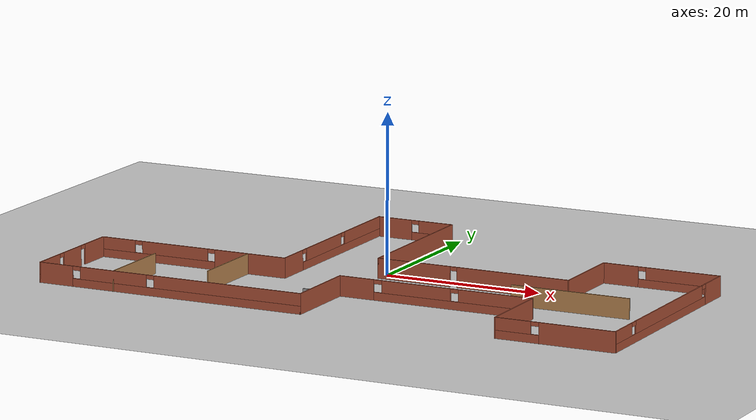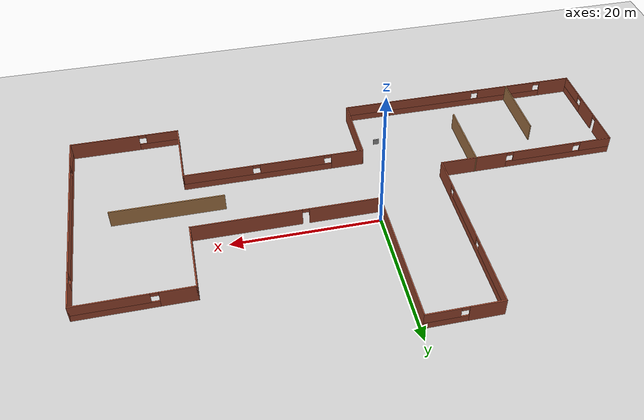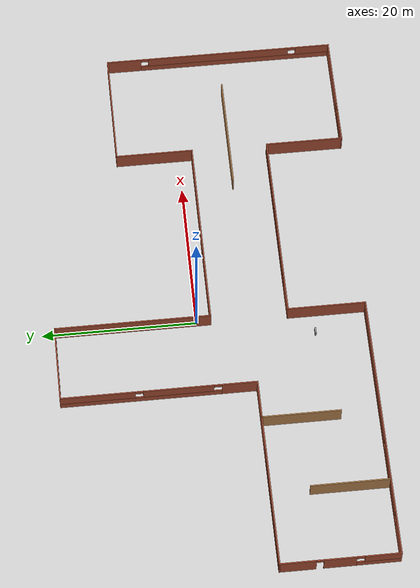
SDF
<sdf version="1.6">
 <world name="default">
  <model name="ground_plane">
   <static>1</static>
   <link name="link">
    <collision name="collision">
     <geometry><plane><normal>0 0 1</normal><size>100 100</size></plane></geometry>
     <surface>
      <contact><collide_bitmask>65535</collide_bitmask></contact>
      <friction><ode><mu>100</mu><mu2>50</mu2></ode></friction>
     </surface>
    </collision>
    <visual name="visual">
     <cast_shadows>0</cast_shadows>
     <geometry><plane><normal>0 0 1</normal><size>100 100</size></plane></geometry>
     <material>
      <script><uri>file://media/materials/scripts/gazebo.material</uri><name>Gazebo/Grey</name></script>
     </material>
    </visual>
   </link>
  </model>
  <model name="Building">
   <pose>2.15486 -1.76376 0 0 -0 0</pose>
   <link name="Wall_0">
    <pose>-12.5 7.5 0 0 -0 1.5708</pose>
    <visual name="Wall_0_Visual_0">
     <pose>-10.2875 0 1.25 0 -0 0</pose>
     <geometry><box><size>4.575 0.15 2.5</size></box></geometry>
     <material>
      <script><uri>file://media/materials/scripts/gazebo.material</uri><name>Gazebo/Bricks</name></script>
      <ambient>1 1 1 1</ambient>
     </material>
     <meta><layer>0</layer></meta>
    </visual>
    <collision name="Wall_0_Collision_0">
     <geometry><box><size>4.575 0.15 2.5</size></box></geometry>
     <pose>-10.2875 0 1.25 0 -0 0</pose>
    </collision>
    <visual name="Wall_0_Visual_1">
     <pose>2.2875 0 0.5 0 -0 0</pose>
     <geometry><box><size>20.575 0.15 1</size></box></geometry>
     <material>
      <script><uri>file://media/materials/scripts/gazebo.material</uri><name>Gazebo/Bricks</name></script>
      <ambient>1 1 1 1</ambient>
     </material>
     <meta><layer>0</layer></meta>
    </visual>
    <collision name="Wall_0_Collision_1">
     <geometry><box><size>20.575 0.15 1</size></box></geometry>
     <pose>2.2875 0 0.5 0 -0 0</pose>
    </collision>
    <visual name="Wall_0_Visual_2">
     <pose>-2.5 0 1.75 0 -0 0</pose>
     <geometry><box><size>9 0.15 1.5</size></box></geometry>
     <material>
      <script><uri>file://media/materials/scripts/gazebo.material</uri><name>Gazebo/Bricks</name></script>
      <ambient>1 1 1 1</ambient>
     </material>
     <meta><layer>0</layer></meta>
    </visual>
    <collision name="Wall_0_Collision_2">
     <geometry><box><size>9 0.15 1.5</size></box></geometry>
     <pose>-2.5 0 1.75 0 -0 0</pose>
    </collision>
    <visual name="Wall_0_Visual_3">
     <pose>7.7875 0 1.75 0 -0 0</pose>
     <geometry><box><size>9.575 0.15 1.5</size></box></geometry>
     <material>
      <script><uri>file://media/materials/scripts/gazebo.material</uri><name>Gazebo/Bricks</name></script>
      <ambient>1 1 1 1</ambient>
     </material>
     <meta><layer>0</layer></meta>
    </visual>
    <collision name="Wall_0_Collision_3">
     <geometry><box><size>9.575 0.15 1.5</size></box></geometry>
     <pose>7.7875 0 1.75 0 -0 0</pose>
    </collision>
    <visual name="Wall_0_Visual_4">
     <pose>-7.5 0 2.25 0 -0 0</pose>
     <geometry><box><size>1 0.15 0.5</size></box></geometry>
     <material>
      <script><uri>file://media/materials/scripts/gazebo.material</uri><name>Gazebo/Bricks</name></script>
      <ambient>1 1 1 1</ambient>
     </material>
     <meta><layer>0</layer></meta>
    </visual>
    <collision name="Wall_0_Collision_4">
     <geometry><box><size>1 0.15 0.5</size></box></geometry>
     <pose>-7.5 0 2.25 0 -0 0</pose>
    </collision>
    <visual name="Wall_0_Visual_5">
     <pose>2.5 0 2.25 0 -0 0</pose>
     <geometry><box><size>1 0.15 0.5</size></box></geometry>
     <material>
      <script><uri>file://media/materials/scripts/gazebo.material</uri><name>Gazebo/Bricks</name></script>
      <ambient>1 1 1 1</ambient>
     </material>
     <meta><layer>0</layer></meta>
    </visual>
    <collision name="Wall_0_Collision_5">
     <geometry><box><size>1 0.15 0.5</size></box></geometry>
     <pose>2.5 0 2.25 0 -0 0</pose>
    </collision>
   </link>
   <link name="Wall_11">
    <pose>30 10 0 0 -0 0</pose>
    <visual name="Wall_11_Visual_0">
     <pose>-5.2875 0 1.25 0 -0 0</pose>
     <geometry><box><size>4.575 0.15 2.5</size></box></geometry>
     <material>
      <script><uri>file://media/materials/scripts/gazebo.material</uri><name>Gazebo/Bricks</name></script>
      <ambient>1 1 1 1</ambient>
     </material>
     <meta><layer>0</layer></meta>
    </visual>
    <collision name="Wall_11_Collision_0">
     <geometry><box><size>4.575 0.15 2.5</size></box></geometry>
     <pose>-5.2875 0 1.25 0 -0 0</pose>
    </collision>
    <visual name="Wall_11_Visual_1">
     <pose>2.2875 0 0.5 0 -0 0</pose>
     <geometry><box><size>10.575 0.15 1</size></box></geometry>
     <material>
      <script><uri>file://media/materials/scripts/gazebo.material</uri><name>Gazebo/Bricks</name></script>
      <ambient>1 1 1 1</ambient>
     </material>
     <meta><layer>0</layer></meta>
    </visual>
    <collision name="Wall_11_Collision_1">
     <geometry><box><size>10.575 0.15 1</size></box></geometry>
     <pose>2.2875 0 0.5 0 -0 0</pose>
    </collision>
    <visual name="Wall_11_Visual_2">
     <pose>2.7875 0 1.75 0 -0 0</pose>
     <geometry><box><size>9.575 0.15 1.5</size></box></geometry>
     <material>
      <script><uri>file://media/materials/scripts/gazebo.material</uri><name>Gazebo/Bricks</name></script>
      <ambient>1 1 1 1</ambient>
     </material>
     <meta><layer>0</layer></meta>
    </visual>
    <collision name="Wall_11_Collision_2">
     <geometry><box><size>9.575 0.15 1.5</size></box></geometry>
     <pose>2.7875 0 1.75 0 -0 0</pose>
    </collision>
    <visual name="Wall_11_Visual_3">
     <pose>-2.5 0 2.25 0 -0 0</pose>
     <geometry><box><size>1 0.15 0.5</size></box></geometry>
     <material>
      <script><uri>file://media/materials/scripts/gazebo.material</uri><name>Gazebo/Bricks</name></script>
      <ambient>1 1 1 1</ambient>
     </material>
     <meta><layer>0</layer></meta>
    </visual>
    <collision name="Wall_11_Collision_3">
     <geometry><box><size>1 0.15 0.5</size></box></geometry>
     <pose>-2.5 0 2.25 0 -0 0</pose>
    </collision>
   </link>
   <link name="Wall_13">
    <pose>37.5 -4.925 0 0 0 -1.5708</pose>
    <visual name="Wall_13_Visual_0">
     <pose>-12.7125 0 1.25 0 -0 0</pose>
     <geometry><box><size>4.575 0.15 2.5</size></box></geometry>
     <material>
      <script><uri>file://media/materials/scripts/gazebo.material</uri><name>Gazebo/Bricks</name></script>
      <ambient>1 1 1 1</ambient>
     </material>
     <meta><layer>0</layer></meta>
    </visual>
    <collision name="Wall_13_Collision_0">
     <geometry><box><size>4.575 0.15 2.5</size></box></geometry>
     <pose>-12.7125 0 1.25 0 -0 0</pose>
    </collision>
    <visual name="Wall_13_Visual_1">
     <pose>2.2875 0 0.5 0 -0 0</pose>
     <geometry><box><size>25.425 0.15 1</size></box></geometry>
     <material>
      <script><uri>file://media/materials/scripts/gazebo.material</uri><name>Gazebo/Bricks</name></script>
      <ambient>1 1 1 1</ambient>
     </material>
     <meta><layer>0</layer></meta>
    </visual>
    <collision name="Wall_13_Collision_1">
     <geometry><box><size>25.425 0.15 1</size></box></geometry>
     <pose>2.2875 0 0.5 0 -0 0</pose>
    </collision>
    <visual name="Wall_13_Visual_2">
     <pose>0.075 0 1.75 0 -0 0</pose>
     <geometry><box><size>19 0.15 1.5</size></box></geometry>
     <material>
      <script><uri>file://media/materials/scripts/gazebo.material</uri><name>Gazebo/Bricks</name></script>
      <ambient>1 1 1 1</ambient>
     </material>
     <meta><layer>0</layer></meta>
    </visual>
    <collision name="Wall_13_Collision_2">
     <geometry><box><size>19 0.15 1.5</size></box></geometry>
     <pose>0.075 0 1.75 0 -0 0</pose>
    </collision>
    <visual name="Wall_13_Visual_3">
     <pose>12.7875 0 1.75 0 -0 0</pose>
     <geometry><box><size>4.425 0.15 1.5</size></box></geometry>
     <material>
      <script><uri>file://media/materials/scripts/gazebo.material</uri><name>Gazebo/Bricks</name></script>
      <ambient>1 1 1 1</ambient>
     </material>
     <meta><layer>0</layer></meta>
    </visual>
    <collision name="Wall_13_Collision_3">
     <geometry><box><size>4.425 0.15 1.5</size></box></geometry>
     <pose>12.7875 0 1.75 0 -0 0</pose>
    </collision>
    <visual name="Wall_13_Visual_4">
     <pose>-9.925 0 2.25 0 -0 0</pose>
     <geometry><box><size>1 0.15 0.5</size></box></geometry>
     <material>
      <script><uri>file://media/materials/scripts/gazebo.material</uri><name>Gazebo/Bricks</name></script>
      <ambient>1 1 1 1</ambient>
     </material>
     <meta><layer>0</layer></meta>
    </visual>
    <collision name="Wall_13_Collision_4">
     <geometry><box><size>1 0.15 0.5</size></box></geometry>
     <pose>-9.925 0 2.25 0 -0 0</pose>
    </collision>
    <visual name="Wall_13_Visual_5">
     <pose>10.075 0 2.25 0 -0 0</pose>
     <geometry><box><size>1 0.15 0.5</size></box></geometry>
     <material>
      <script><uri>file://media/materials/scripts/gazebo.material</uri><name>Gazebo/Bricks</name></script>
      <ambient>1 1 1 1</ambient>
     </material>
     <meta><layer>0</layer></meta>
    </visual>
    <collision name="Wall_13_Collision_5">
     <geometry><box><size>1 0.15 0.5</size></box></geometry>
     <pose>10.075 0 2.25 0 -0 0</pose>
    </collision>
   </link>
   <link name="Wall_15">
    <pose>30 -20 0 0 -0 3.14159</pose>
    <visual name="Wall_15_Visual_0">
     <pose>-2.7875 0 1.25 0 -0 0</pose>
     <geometry><box><size>9.575 0.15 2.5</size></box></geometry>
     <material>
      <script><uri>file://media/materials/scripts/gazebo.material</uri><name>Gazebo/Bricks</name></script>
      <ambient>1 1 1 1</ambient>
     </material>
     <meta><layer>0</layer></meta>
    </visual>
    <collision name="Wall_15_Collision_0">
     <geometry><box><size>9.575 0.15 2.5</size></box></geometry>
     <pose>-2.7875 0 1.25 0 -0 0</pose>
    </collision>
    <visual name="Wall_15_Visual_1">
     <pose>4.7875 0 0.5 0 -0 0</pose>
     <geometry><box><size>5.575 0.15 1</size></box></geometry>
     <material>
      <script><uri>file://media/materials/scripts/gazebo.material</uri><name>Gazebo/Bricks</name></script>
      <ambient>1 1 1 1</ambient>
     </material>
     <meta><layer>0</layer></meta>
    </visual>
    <collision name="Wall_15_Collision_1">
     <geometry><box><size>5.575 0.15 1</size></box></geometry>
     <pose>4.7875 0 0.5 0 -0 0</pose>
    </collision>
    <visual name="Wall_15_Visual_2">
     <pose>5.2875 0 1.75 0 -0 0</pose>
     <geometry><box><size>4.575 0.15 1.5</size></box></geometry>
     <material>
      <script><uri>file://media/materials/scripts/gazebo.material</uri><name>Gazebo/Bricks</name></script>
      <ambient>1 1 1 1</ambient>
     </material>
     <meta><layer>0</layer></meta>
    </visual>
    <collision name="Wall_15_Collision_2">
     <geometry><box><size>4.575 0.15 1.5</size></box></geometry>
     <pose>5.2875 0 1.75 0 -0 0</pose>
    </collision>
    <visual name="Wall_15_Visual_3">
     <pose>2.5 0 2.25 0 -0 0</pose>
     <geometry><box><size>1 0.15 0.5</size></box></geometry>
     <material>
      <script><uri>file://media/materials/scripts/gazebo.material</uri><name>Gazebo/Bricks</name></script>
      <ambient>1 1 1 1</ambient>
     </material>
     <meta><layer>0</layer></meta>
    </visual>
    <collision name="Wall_15_Collision_3">
     <geometry><box><size>1 0.15 0.5</size></box></geometry>
     <pose>2.5 0 2.25 0 -0 0</pose>
    </collision>
   </link>
   <link name="Wall_17">
    <collision name="Wall_17_Collision">
     <geometry><box><size>10.15 0.15 2.5</size></box></geometry>
     <pose>0 0 1.25 0 -0 0</pose>
    </collision>
    <visual name="Wall_17_Visual">
     <pose>0 0 1.25 0 -0 0</pose>
     <geometry><box><size>10.15 0.15 2.5</size></box></geometry>
     <material>
      <script><uri>file://media/materials/scripts/gazebo.material</uri><name>Gazebo/Bricks</name></script>
      <ambient>1 1 1 1</ambient>
     </material>
     <meta><layer>0</layer></meta>
    </visual>
    <pose>22.5 -15 0 0 -0 1.5708</pose>
   </link>
   <link name="Wall_19">
    <pose>-25 -5 0 0 -0 3.14159</pose>
    <visual name="Wall_19_Visual_0">
     <pose>-7.7875 0 1.25 0 -0 0</pose>
     <geometry><box><size>9.575 0.15 2.5</size></box></geometry>
     <material>
      <script><uri>file://media/materials/scripts/gazebo.material</uri><name>Gazebo/Bricks</name></script>
      <ambient>1 1 1 1</ambient>
     </material>
     <meta><layer>0</layer></meta>
    </visual>
    <collision name="Wall_19_Collision_0">
     <geometry><box><size>9.575 0.15 2.5</size></box></geometry>
     <pose>-7.7875 0 1.25 0 -0 0</pose>
    </collision>
    <visual name="Wall_19_Visual_1">
     <pose>4.7875 0 0.5 0 -0 0</pose>
     <geometry><box><size>15.575 0.15 1</size></box></geometry>
     <material>
      <script><uri>file://media/materials/scripts/gazebo.material</uri><name>Gazebo/Bricks</name></script>
      <ambient>1 1 1 1</ambient>
     </material>
     <meta><layer>0</layer></meta>
    </visual>
    <collision name="Wall_19_Collision_1">
     <geometry><box><size>15.575 0.15 1</size></box></geometry>
     <pose>4.7875 0 0.5 0 -0 0</pose>
    </collision>
    <visual name="Wall_19_Visual_2">
     <pose>2.5 0 1.75 0 -0 0</pose>
     <geometry><box><size>9 0.15 1.5</size></box></geometry>
     <material>
      <script><uri>file://media/materials/scripts/gazebo.material</uri><name>Gazebo/Bricks</name></script>
      <ambient>1 1 1 1</ambient>
     </material>
     <meta><layer>0</layer></meta>
    </visual>
    <collision name="Wall_19_Collision_2">
     <geometry><box><size>9 0.15 1.5</size></box></geometry>
     <pose>2.5 0 1.75 0 -0 0</pose>
    </collision>
    <visual name="Wall_19_Visual_3">
     <pose>10.2875 0 1.75 0 -0 0</pose>
     <geometry><box><size>4.575 0.15 1.5</size></box></geometry>
     <material>
      <script><uri>file://media/materials/scripts/gazebo.material</uri><name>Gazebo/Bricks</name></script>
      <ambient>1 1 1 1</ambient>
     </material>
     <meta><layer>0</layer></meta>
    </visual>
    <collision name="Wall_19_Collision_3">
     <geometry><box><size>4.575 0.15 1.5</size></box></geometry>
     <pose>10.2875 0 1.75 0 -0 0</pose>
    </collision>
    <visual name="Wall_19_Visual_4">
     <pose>-2.5 0 2.25 0 -0 0</pose>
     <geometry><box><size>1 0.15 0.5</size></box></geometry>
     <material>
      <script><uri>file://media/materials/scripts/gazebo.material</uri><name>Gazebo/Bricks</name></script>
      <ambient>1 1 1 1</ambient>
     </material>
     <meta><layer>0</layer></meta>
    </visual>
    <collision name="Wall_19_Collision_4">
     <geometry><box><size>1 0.15 0.5</size></box></geometry>
     <pose>-2.5 0 2.25 0 -0 0</pose>
    </collision>
    <visual name="Wall_19_Visual_5">
     <pose>7.5 0 2.25 0 -0 0</pose>
     <geometry><box><size>1 0.15 0.5</size></box></geometry>
     <material>
      <script><uri>file://media/materials/scripts/gazebo.material</uri><name>Gazebo/Bricks</name></script>
      <ambient>1 1 1 1</ambient>
     </material>
     <meta><layer>0</layer></meta>
    </visual>
    <collision name="Wall_19_Collision_5">
     <geometry><box><size>1 0.15 0.5</size></box></geometry>
     <pose>7.5 0 2.25 0 -0 0</pose>
    </collision>
   </link>
   <link name="Wall_2">
    <pose>-7.5 20 0 0 -0 0</pose>
    <visual name="Wall_2_Visual_0">
     <pose>-2.7875 0 1.25 0 -0 0</pose>
     <geometry><box><size>4.575 0.15 2.5</size></box></geometry>
     <material>
      <script><uri>file://media/materials/scripts/gazebo.material</uri><name>Gazebo/Bricks</name></script>
      <ambient>1 1 1 1</ambient>
     </material>
     <meta><layer>0</layer></meta>
    </visual>
    <collision name="Wall_2_Collision_0">
     <geometry><box><size>4.575 0.15 2.5</size></box></geometry>
     <pose>-2.7875 0 1.25 0 -0 0</pose>
    </collision>
    <visual name="Wall_2_Visual_1">
     <pose>2.2875 0 0.5 0 -0 0</pose>
     <geometry><box><size>5.575 0.15 1</size></box></geometry>
     <material>
      <script><uri>file://media/materials/scripts/gazebo.material</uri><name>Gazebo/Bricks</name></script>
      <ambient>1 1 1 1</ambient>
     </material>
     <meta><layer>0</layer></meta>
    </visual>
    <collision name="Wall_2_Collision_1">
     <geometry><box><size>5.575 0.15 1</size></box></geometry>
     <pose>2.2875 0 0.5 0 -0 0</pose>
    </collision>
    <visual name="Wall_2_Visual_2">
     <pose>2.7875 0 1.75 0 -0 0</pose>
     <geometry><box><size>4.575 0.15 1.5</size></box></geometry>
     <material>
      <script><uri>file://media/materials/scripts/gazebo.material</uri><name>Gazebo/Bricks</name></script>
      <ambient>1 1 1 1</ambient>
     </material>
     <meta><layer>0</layer></meta>
    </visual>
    <collision name="Wall_2_Collision_2">
     <geometry><box><size>4.575 0.15 1.5</size></box></geometry>
     <pose>2.7875 0 1.75 0 -0 0</pose>
    </collision>
    <visual name="Wall_2_Visual_3">
     <pose>0 0 2.25 0 -0 0</pose>
     <geometry><box><size>1 0.15 0.5</size></box></geometry>
     <material>
      <script><uri>file://media/materials/scripts/gazebo.material</uri><name>Gazebo/Bricks</name></script>
      <ambient>1 1 1 1</ambient>
     </material>
     <meta><layer>0</layer></meta>
    </visual>
    <collision name="Wall_2_Collision_3">
     <geometry><box><size>1 0.15 0.5</size></box></geometry>
     <pose>0 0 2.25 0 -0 0</pose>
    </collision>
   </link>
   <link name="Wall_21">
    <pose>-37.5 -12.5 0 0 0 -1.5708</pose>
    <visual name="Wall_21_Visual_0">
     <pose>-5.2625 0 1.25 0 -0 0</pose>
     <geometry><box><size>4.625 0.15 2.5</size></box></geometry>
     <material>
      <script><uri>file://media/materials/scripts/gazebo.material</uri><name>Gazebo/Bricks</name></script>
      <ambient>1 1 1 1</ambient>
     </material>
     <meta><layer>0</layer></meta>
    </visual>
    <collision name="Wall_21_Collision_0">
     <geometry><box><size>4.625 0.15 2.5</size></box></geometry>
     <pose>-5.2625 0 1.25 0 -0 0</pose>
    </collision>
    <visual name="Wall_21_Visual_1">
     <pose>-0.025 0 1.25 0 -0 0</pose>
     <geometry><box><size>4.05 0.15 2.5</size></box></geometry>
     <material>
      <script><uri>file://media/materials/scripts/gazebo.material</uri><name>Gazebo/Bricks</name></script>
      <ambient>1 1 1 1</ambient>
     </material>
     <meta><layer>0</layer></meta>
    </visual>
    <collision name="Wall_21_Collision_1">
     <geometry><box><size>4.05 0.15 2.5</size></box></geometry>
     <pose>-0.025 0 1.25 0 -0 0</pose>
    </collision>
    <visual name="Wall_21_Visual_2">
     <pose>4.7875 0 0.5 0 -0 0</pose>
     <geometry><box><size>5.575 0.15 1</size></box></geometry>
     <material>
      <script><uri>file://media/materials/scripts/gazebo.material</uri><name>Gazebo/Bricks</name></script>
      <ambient>1 1 1 1</ambient>
     </material>
     <meta><layer>0</layer></meta>
    </visual>
    <collision name="Wall_21_Collision_2">
     <geometry><box><size>5.575 0.15 1</size></box></geometry>
     <pose>4.7875 0 0.5 0 -0 0</pose>
    </collision>
    <visual name="Wall_21_Visual_3">
     <pose>5.2875 0 1.75 0 -0 0</pose>
     <geometry><box><size>4.575 0.15 1.5</size></box></geometry>
     <material>
      <script><uri>file://media/materials/scripts/gazebo.material</uri><name>Gazebo/Bricks</name></script>
      <ambient>1 1 1 1</ambient>
     </material>
     <meta><layer>0</layer></meta>
    </visual>
    <collision name="Wall_21_Collision_3">
     <geometry><box><size>4.575 0.15 1.5</size></box></geometry>
     <pose>5.2875 0 1.75 0 -0 0</pose>
    </collision>
    <visual name="Wall_21_Visual_4">
     <pose>-2.5 0 2.25 0 -0 0</pose>
     <geometry><box><size>0.9 0.15 0.5</size></box></geometry>
     <material>
      <script><uri>file://media/materials/scripts/gazebo.material</uri><name>Gazebo/Bricks</name></script>
      <ambient>1 1 1 1</ambient>
     </material>
     <meta><layer>0</layer></meta>
    </visual>
    <collision name="Wall_21_Collision_4">
     <geometry><box><size>0.9 0.15 0.5</size></box></geometry>
     <pose>-2.5 0 2.25 0 -0 0</pose>
    </collision>
    <visual name="Wall_21_Visual_5">
     <pose>2.5 0 2.25 0 -0 0</pose>
     <geometry><box><size>1 0.15 0.5</size></box></geometry>
     <material>
      <script><uri>file://media/materials/scripts/gazebo.material</uri><name>Gazebo/Bricks</name></script>
      <ambient>1 1 1 1</ambient>
     </material>
     <meta><layer>0</layer></meta>
    </visual>
    <collision name="Wall_21_Collision_5">
     <geometry><box><size>1 0.15 0.5</size></box></geometry>
     <pose>2.5 0 2.25 0 -0 0</pose>
    </collision>
   </link>
   <link name="Wall_23">
    <pose>-20 -20 0 0 -0 0</pose>
    <visual name="Wall_23_Visual_0">
     <pose>-15.2875 0 1.25 0 -0 0</pose>
     <geometry><box><size>4.575 0.15 2.5</size></box></geometry>
     <material>
      <script><uri>file://media/materials/scripts/gazebo.material</uri><name>Gazebo/Bricks</name></script>
      <ambient>1 1 1 1</ambient>
     </material>
     <meta><layer>0</layer></meta>
    </visual>
    <collision name="Wall_23_Collision_0">
     <geometry><box><size>4.575 0.15 2.5</size></box></geometry>
     <pose>-15.2875 0 1.25 0 -0 0</pose>
    </collision>
    <visual name="Wall_23_Visual_1">
     <pose>2.2875 0 0.5 0 -0 0</pose>
     <geometry><box><size>30.575 0.15 1</size></box></geometry>
     <material>
      <script><uri>file://media/materials/scripts/gazebo.material</uri><name>Gazebo/Bricks</name></script>
      <ambient>1 1 1 1</ambient>
     </material>
     <meta><layer>0</layer></meta>
    </visual>
    <collision name="Wall_23_Collision_1">
     <geometry><box><size>30.575 0.15 1</size></box></geometry>
     <pose>2.2875 0 0.5 0 -0 0</pose>
    </collision>
    <visual name="Wall_23_Visual_2">
     <pose>-7.5 0 1.75 0 -0 0</pose>
     <geometry><box><size>9 0.15 1.5</size></box></geometry>
     <material>
      <script><uri>file://media/materials/scripts/gazebo.material</uri><name>Gazebo/Bricks</name></script>
      <ambient>1 1 1 1</ambient>
     </material>
     <meta><layer>0</layer></meta>
    </visual>
    <collision name="Wall_23_Collision_2">
     <geometry><box><size>9 0.15 1.5</size></box></geometry>
     <pose>-7.5 0 1.75 0 -0 0</pose>
    </collision>
    <visual name="Wall_23_Visual_3">
     <pose>7.7875 0 1.75 0 -0 0</pose>
     <geometry><box><size>19.575 0.15 1.5</size></box></geometry>
     <material>
      <script><uri>file://media/materials/scripts/gazebo.material</uri><name>Gazebo/Bricks</name></script>
      <ambient>1 1 1 1</ambient>
     </material>
     <meta><layer>0</layer></meta>
    </visual>
    <collision name="Wall_23_Collision_3">
     <geometry><box><size>19.575 0.15 1.5</size></box></geometry>
     <pose>7.7875 0 1.75 0 -0 0</pose>
    </collision>
    <visual name="Wall_23_Visual_4">
     <pose>-12.5 0 2.25 0 -0 0</pose>
     <geometry><box><size>1 0.15 0.5</size></box></geometry>
     <material>
      <script><uri>file://media/materials/scripts/gazebo.material</uri><name>Gazebo/Bricks</name></script>
      <ambient>1 1 1 1</ambient>
     </material>
     <meta><layer>0</layer></meta>
    </visual>
    <collision name="Wall_23_Collision_4">
     <geometry><box><size>1 0.15 0.5</size></box></geometry>
     <pose>-12.5 0 2.25 0 -0 0</pose>
    </collision>
    <visual name="Wall_23_Visual_5">
     <pose>-2.5 0 2.25 0 -0 0</pose>
     <geometry><box><size>1 0.15 0.5</size></box></geometry>
     <material>
      <script><uri>file://media/materials/scripts/gazebo.material</uri><name>Gazebo/Bricks</name></script>
      <ambient>1 1 1 1</ambient>
     </material>
     <meta><layer>0</layer></meta>
    </visual>
    <collision name="Wall_23_Collision_5">
     <geometry><box><size>1 0.15 0.5</size></box></geometry>
     <pose>-2.5 0 2.25 0 -0 0</pose>
    </collision>
   </link>
   <link name="Wall_24">
    <collision name="Wall_24_Collision">
     <geometry><box><size>10.15 0.15 2.5</size></box></geometry>
     <pose>0 0 1.25 0 -0 0</pose>
    </collision>
    <visual name="Wall_24_Visual">
     <pose>0 0 1.25 0 -0 0</pose>
     <geometry><box><size>10.15 0.15 2.5</size></box></geometry>
     <material>
      <script><uri>file://media/materials/scripts/gazebo.material</uri><name>Gazebo/Bricks</name></script>
      <ambient>1 1 1 1</ambient>
     </material>
     <meta><layer>0</layer></meta>
    </visual>
    <pose>-2.5 -15 0 0 -0 1.5708</pose>
   </link>
   <link name="Wall_26">
    <pose>10 -10 0 0 -0 0</pose>
    <visual name="Wall_26_Visual_0">
     <pose>-10.2875 0 1.25 0 -0 0</pose>
     <geometry><box><size>4.575 0.15 2.5</size></box></geometry>
     <material>
      <script><uri>file://media/materials/scripts/gazebo.material</uri><name>Gazebo/Bricks</name></script>
      <ambient>1 1 1 1</ambient>
     </material>
     <meta><layer>0</layer></meta>
    </visual>
    <collision name="Wall_26_Collision_0">
     <geometry><box><size>4.575 0.15 2.5</size></box></geometry>
     <pose>-10.2875 0 1.25 0 -0 0</pose>
    </collision>
    <visual name="Wall_26_Visual_1">
     <pose>2.2875 0 0.5 0 -0 0</pose>
     <geometry><box><size>20.575 0.15 1</size></box></geometry>
     <material>
      <script><uri>file://media/materials/scripts/gazebo.material</uri><name>Gazebo/Bricks</name></script>
      <ambient>1 1 1 1</ambient>
     </material>
     <meta><layer>0</layer></meta>
    </visual>
    <collision name="Wall_26_Collision_1">
     <geometry><box><size>20.575 0.15 1</size></box></geometry>
     <pose>2.2875 0 0.5 0 -0 0</pose>
    </collision>
    <visual name="Wall_26_Visual_2">
     <pose>-2.5 0 1.75 0 -0 0</pose>
     <geometry><box><size>9 0.15 1.5</size></box></geometry>
     <material>
      <script><uri>file://media/materials/scripts/gazebo.material</uri><name>Gazebo/Bricks</name></script>
      <ambient>1 1 1 1</ambient>
     </material>
     <meta><layer>0</layer></meta>
    </visual>
    <collision name="Wall_26_Collision_2">
     <geometry><box><size>9 0.15 1.5</size></box></geometry>
     <pose>-2.5 0 1.75 0 -0 0</pose>
    </collision>
    <visual name="Wall_26_Visual_3">
     <pose>7.7875 0 1.75 0 -0 0</pose>
     <geometry><box><size>9.575 0.15 1.5</size></box></geometry>
     <material>
      <script><uri>file://media/materials/scripts/gazebo.material</uri><name>Gazebo/Bricks</name></script>
      <ambient>1 1 1 1</ambient>
     </material>
     <meta><layer>0</layer></meta>
    </visual>
    <collision name="Wall_26_Collision_3">
     <geometry><box><size>9.575 0.15 1.5</size></box></geometry>
     <pose>7.7875 0 1.75 0 -0 0</pose>
    </collision>
    <visual name="Wall_26_Visual_4">
     <pose>-7.5 0 2.25 0 -0 0</pose>
     <geometry><box><size>1 0.15 0.5</size></box></geometry>
     <material>
      <script><uri>file://media/materials/scripts/gazebo.material</uri><name>Gazebo/Bricks</name></script>
      <ambient>1 1 1 1</ambient>
     </material>
     <meta><layer>0</layer></meta>
    </visual>
    <collision name="Wall_26_Collision_4">
     <geometry><box><size>1 0.15 0.5</size></box></geometry>
     <pose>-7.5 0 2.25 0 -0 0</pose>
    </collision>
    <visual name="Wall_26_Visual_5">
     <pose>2.5 0 2.25 0 -0 0</pose>
     <geometry><box><size>1 0.15 0.5</size></box></geometry>
     <material>
      <script><uri>file://media/materials/scripts/gazebo.material</uri><name>Gazebo/Bricks</name></script>
      <ambient>1 1 1 1</ambient>
     </material>
     <meta><layer>0</layer></meta>
    </visual>
    <collision name="Wall_26_Collision_5">
     <geometry><box><size>1 0.15 0.5</size></box></geometry>
     <pose>2.5 0 2.25 0 -0 0</pose>
    </collision>
   </link>
   <link name="Wall_28">
    <collision name="Wall_28_Collision">
     <geometry><box><size>15.15 0.15 2.5</size></box></geometry>
     <pose>0 0 1.25 0 -0 0</pose>
    </collision>
    <visual name="Wall_28_Visual">
     <pose>0 0 1.25 0 -0 0</pose>
     <geometry><box><size>15.15 0.15 2.5</size></box></geometry>
     <material>
      <script><uri>file://media/materials/scripts/gazebo.material</uri><name>Gazebo/Wood</name></script>
      <ambient>1 1 1 1</ambient>
     </material>
     <meta><layer>0</layer></meta>
    </visual>
    <pose>25 -5 0 0 -0 0</pose>
   </link>
   <link name="Wall_30">
    <collision name="Wall_30_Collision">
     <geometry><box><size>10.15 0.15 2.5</size></box></geometry>
     <pose>0 0 1.25 0 -0 0</pose>
    </collision>
    <visual name="Wall_30_Visual">
     <pose>0 0 1.25 0 -0 0</pose>
     <geometry><box><size>10.15 0.15 2.5</size></box></geometry>
     <material>
      <script><uri>file://media/materials/scripts/gazebo.material</uri><name>Gazebo/Wood</name></script>
      <ambient>1 1 1 1</ambient>
     </material>
     <meta><layer>0</layer></meta>
    </visual>
    <pose>-27.5 -15 0 0 0 -1.5708</pose>
   </link>
   <link name="Wall_32">
    <collision name="Wall_32_Collision">
     <geometry><box><size>10.15 0.15 2.5</size></box></geometry>
     <pose>0 0 1.25 0 -0 0</pose>
    </collision>
    <visual name="Wall_32_Visual">
     <pose>0 0 1.25 0 -0 0</pose>
     <geometry><box><size>10.15 0.15 2.5</size></box></geometry>
     <material>
      <script><uri>file://media/materials/scripts/gazebo.material</uri><name>Gazebo/Wood</name></script>
      <ambient>1 1 1 1</ambient>
     </material>
     <meta><layer>0</layer></meta>
    </visual>
    <pose>-17.5 -10 0 0 0 -1.5708</pose>
   </link>
   <link name="Wall_4">
    <collision name="Wall_4_Collision">
     <geometry><box><size>20.15 0.15 2.5</size></box></geometry>
     <pose>0 0 1.25 0 -0 0</pose>
    </collision>
    <visual name="Wall_4_Visual">
     <pose>0 0 1.25 0 -0 0</pose>
     <geometry><box><size>20.15 0.15 2.5</size></box></geometry>
     <material>
      <script><uri>file://media/materials/scripts/gazebo.material</uri><name>Gazebo/Bricks</name></script>
      <ambient>1 1 1 1</ambient>
     </material>
     <meta><layer>0</layer></meta>
    </visual>
    <pose>-2.5 10 0 0 0 -1.5708</pose>
   </link>
   <link name="Wall_6">
    <pose>10 0 0 0 -0 0</pose>
    <visual name="Wall_6_Visual_0">
     <pose>-7.7625 0 1.25 0 -0 0</pose>
     <geometry><box><size>9.625 0.15 2.5</size></box></geometry>
     <material>
      <script><uri>file://media/materials/scripts/gazebo.material</uri><name>Gazebo/Bricks</name></script>
      <ambient>1 1 1 1</ambient>
     </material>
     <meta><layer>0</layer></meta>
    </visual>
    <collision name="Wall_6_Collision_0">
     <geometry><box><size>9.625 0.15 2.5</size></box></geometry>
     <pose>-7.7625 0 1.25 0 -0 0</pose>
    </collision>
    <visual name="Wall_6_Visual_1">
     <pose>5.2625 0 1.25 0 -0 0</pose>
     <geometry><box><size>14.625 0.15 2.5</size></box></geometry>
     <material>
      <script><uri>file://media/materials/scripts/gazebo.material</uri><name>Gazebo/Bricks</name></script>
      <ambient>1 1 1 1</ambient>
     </material>
     <meta><layer>0</layer></meta>
    </visual>
    <collision name="Wall_6_Collision_1">
     <geometry><box><size>14.625 0.15 2.5</size></box></geometry>
     <pose>5.2625 0 1.25 0 -0 0</pose>
    </collision>
    <visual name="Wall_6_Visual_2">
     <pose>-2.5 0 2.25 0 -0 0</pose>
     <geometry><box><size>0.9 0.15 0.5</size></box></geometry>
     <material>
      <script><uri>file://media/materials/scripts/gazebo.material</uri><name>Gazebo/Bricks</name></script>
      <ambient>1 1 1 1</ambient>
     </material>
     <meta><layer>0</layer></meta>
    </visual>
    <collision name="Wall_6_Collision_2">
     <geometry><box><size>0.9 0.15 0.5</size></box></geometry>
     <pose>-2.5 0 2.25 0 -0 0</pose>
    </collision>
   </link>
   <link name="Wall_9">
    <collision name="Wall_9_Collision">
     <geometry><box><size>10.15 0.15 2.5</size></box></geometry>
     <pose>0 0 1.25 0 -0 0</pose>
    </collision>
    <visual name="Wall_9_Visual">
     <pose>0 0 1.25 0 -0 0</pose>
     <geometry><box><size>10.15 0.15 2.5</size></box></geometry>
     <material>
      <script><uri>file://media/materials/scripts/gazebo.material</uri><name>Gazebo/Bricks</name></script>
      <ambient>1 1 1 1</ambient>
     </material>
     <meta><layer>0</layer></meta>
    </visual>
    <pose>22.5 5 0 0 -0 1.5708</pose>
   </link>
   <link name="Window_9">
    <collision name="Window_9_Collision">
     <geometry><box><size>0.8 0.17 0.8</size></box></geometry>
     <pose>0 0 0.4 0 -0 0</pose>
    </collision>
    <visual name="Window_9_Visual">
     <pose>0 0 0.4 0 -0 0</pose>
     <geometry><box><size>0.8 0.17 0.8</size></box></geometry>
     <material>
      <script><uri>file://media/materials/scripts/gazebo.material</uri><name>Gazebo/Grey</name></script>
     </material>
    </visual>
    <pose>-5.28751 -13.263 0.5 0 -0 0</pose>
   </link>
   <static>1</static>
  </model>
 </world>
</sdf>
